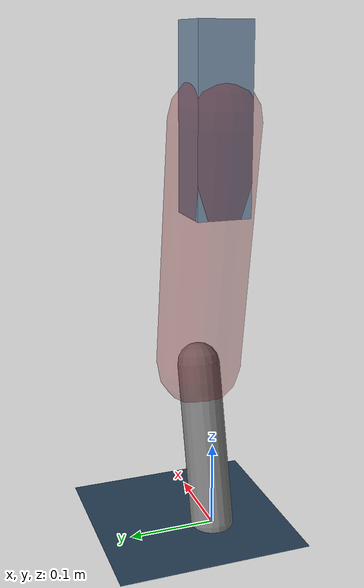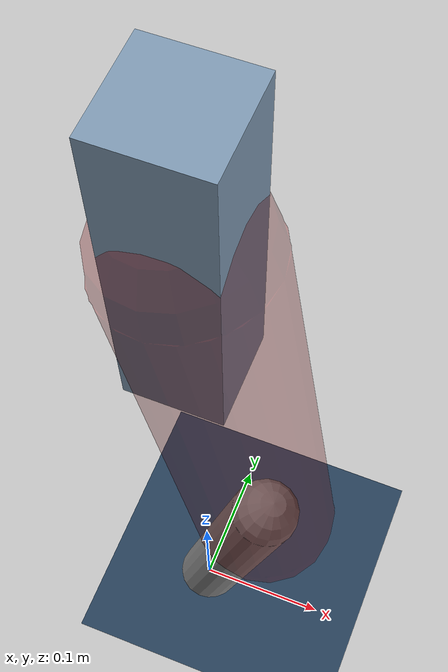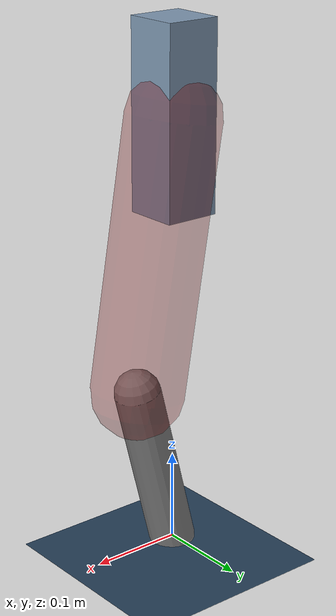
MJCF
<mujoco model="Hopper2D">
	<compiler inertiafromgeom="true" angle="radian" />
	<option timestep="0.001" integrator="implicit" cone="elliptic" solver="Newton" tolerance="1e-10" />

	<default>
		<geom contype="1" conaffinity="1" condim="3" friction="2 0.005 0.0001" solref="0.005 1" />
		<joint limited="true" damping="0.1" />
	</default>

	<asset>
		<texture name="skybox" type="skybox" builtin="gradient" rgb1=".4 .6 .8" rgb2="0 0 0" width="800" height="800" />
		<texture name="grid" type="2d" builtin="checker" rgb1=".1 .2 .3" rgb2=".2 .3 .4" width="300" height="300" mark="edge" markrgb=".2 .3 .4" />
		<material name="ground" texture="grid" texrepeat="1 1" texuniform="true" reflectance="0.1" />
		<material name="leg" rgba="0.5 0.6 0.7 1" />
	</asset>

	<worldbody>

		<geom name="floor" type="plane" size="5 5 0.25" material="ground" />

		<light directional="false" diffuse="0.8 0.8 0.8" specular="0.3 0.3 0.3" pos="0 0 2" dir="0 0 -1" />
		<light mode="targetbodycom" target="base" directional="false" diffuse="0.8 0.8 0.8" specular="0.3 0.3 0.3" pos="0 0 2" dir="0 0 -1" />

		<camera name="fixed" pos="0 -2 1" xyaxes="1 0 0 0 0 1" />
		<camera name="tracking" mode="trackcom" pos="0 -3 1" />

		<body name="root" pos="0 0 0.4728395060499559">
			<joint name="slide_x" type="slide" axis="1 0 0" range="-100 100" />
			<joint name="slide_z" type="slide" axis="0 0 1" range="0 10" />

			<body name="base" pos="0 0 0">
				<geom name="torso" type="box" size="0.03 0.03 0.1" mass="1.782" material="leg" />

				<body name="link1" pos="0 0 0" euler="0 1.4054674559482931 0">
					<joint type="hinge" axis="0 -1 0" pos="0 0 0" name="hinge1" limited="true" range="-3.14 3.14" stiffness="0" damping="0.1" />
					<geom name="thigh" type="capsule" fromto="0 0 0 0.2905240049905924 0 0" size="0.05" rgba="0.5 0 0 0.3" mass="0.9632148134745995" />

					<body name="link2" pos="0.2905240049905924 0 0" euler="0 0.4165841823513243 0">
						<joint type="hinge" axis="0 -1 0" pos="0 0 0" name="hinge2" limited="true" range="-3.14 3.14" stiffness="0" damping="0.1" />
						<geom name="shank" type="capsule" fromto="0 0 0 0.19231550105936351 0 0" size="0.025" mass="0.39438395095342715" />

					</body>
				</body>
			</body>
		</body>
	</worldbody>

	<actuator>
		<motor name="torque1" joint="hinge1" ctrlrange="-55.85101611930276 55.85101611930276" ctrllimited="true" gear="1" />
		<motor name="torque2" joint="hinge2" ctrlrange="-80.47718997003915 80.47718997003915" ctrllimited="true" gear="1" />
	</actuator>
</mujoco>
